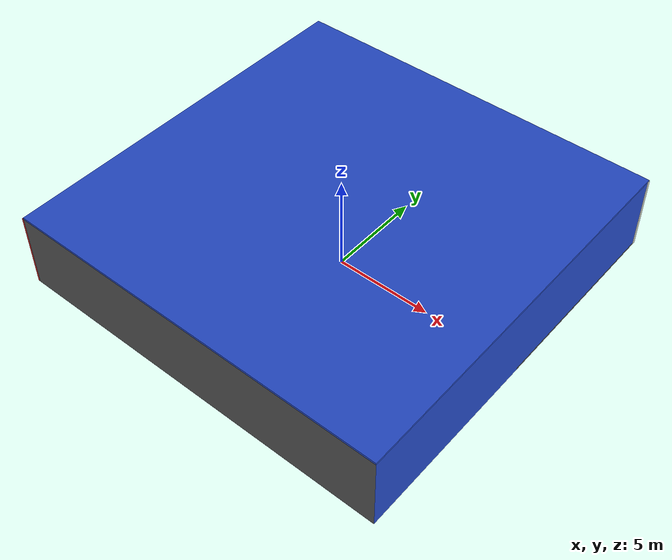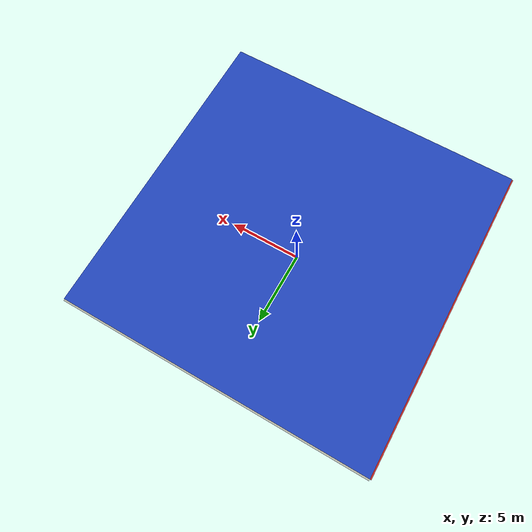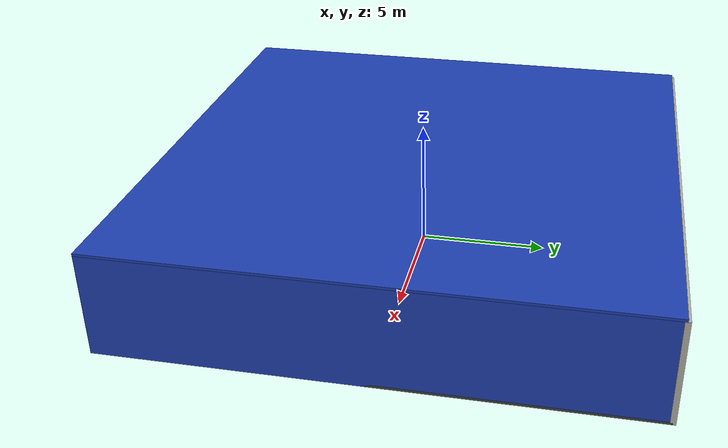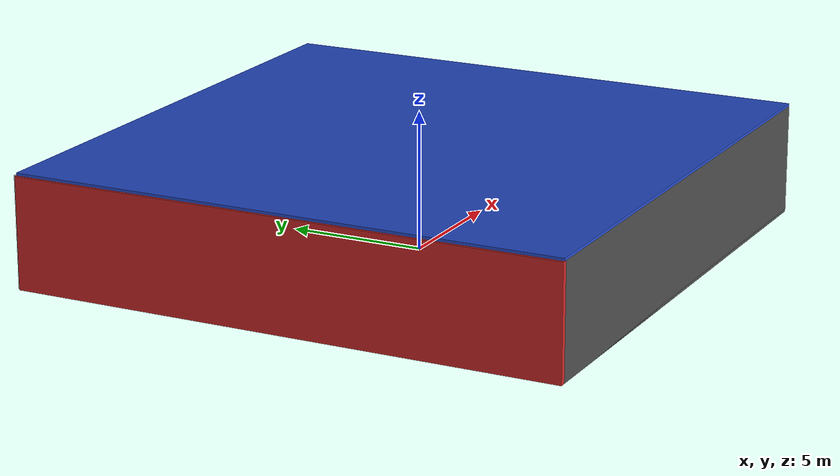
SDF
<sdf version="1.4">
 <world name="default">
  <physics type="ode">
   <max_step_size>0.001</max_step_size>
   <real_time_factor>1</real_time_factor>
   <real_time_update_rate>1000</real_time_update_rate>
   <gravity>0 0 -9.8</gravity>
  </physics>
  <scene><ambient>0.4 0.4 0.4 1</ambient><background>0.7 0.7 0.7 1</background><shadows>1</shadows></scene>
  <model name="Surrounding">
   <static>1</static>
   <link name="Ceiling">
    <collision name="Ceiling_Collision"><geometry><box><size>20 20 0.1</size></box></geometry></collision>
    <visual name="Ceiling_Visual">
     <geometry><box><size>20 20 0.1</size></box></geometry>
     <material>
      <script><uri>file://media/materials/scripts/gazebo.material</uri><name>Gazebo/BlueGlow</name></script>
     </material>
    </visual>
    <pose>0 0 4.05 0 0 0</pose>
   </link>
   <link name="Wall_South">
    <collision name="Wall_South_Collision">
     <geometry><box><size>20 0 4</size></box></geometry>
     <pose>0 0 2 0 -0 0</pose>
    </collision>
    <visual name="Wall_South_Visual">
     <pose>0 0 2 0 -0 0</pose>
     <geometry><box><size>20 0 4</size></box></geometry>
     <material>
      <script><uri>file://media/materials/scripts/gazebo.material</uri><name>Gazebo/DarkGrey</name></script>
     </material>
    </visual>
    <velocity_decay><linear>0</linear><angular>0</angular></velocity_decay>
    <pose>0 -10 0 0 -0 0</pose>
   </link>
   <link name="Wall_East">
    <collision name="Wall_21_Collision">
     <geometry><box><size>20 0 4</size></box></geometry>
     <pose>0 0 2 0 -0 0</pose>
    </collision>
    <visual name="Wall_21_Visual">
     <pose>0 0 2 0 -0 0</pose>
     <geometry><box><size>20 0 4</size></box></geometry>
     <material>
      <script><uri>file://media/materials/scripts/gazebo.material</uri><name>Gazebo/BlueLaser</name></script>
     </material>
    </visual>
    <velocity_decay><linear>0</linear><angular>0</angular></velocity_decay>
    <pose>10 0 0 0 -0 1.5708</pose>
   </link>
   <link name="Wall_North">
    <collision name="Wall_22_Collision">
     <geometry><box><size>20 0.2 4</size></box></geometry>
     <pose>0 0 2 0 -0 0</pose>
    </collision>
    <visual name="Wall_22_Visual">
     <pose>0 0 2 0 -0 0</pose>
     <geometry><box><size>20 0.2 4</size></box></geometry>
     <material>
      <script><uri>file://media/materials/scripts/gazebo.material</uri><name>Gazebo/PaintedWall</name></script>
     </material>
    </visual>
    <velocity_decay><linear>0</linear><angular>0</angular></velocity_decay>
    <pose>0 10 0 0 -0 0</pose>
   </link>
   <link name="Wall_West">
    <collision name="Wall_23_Collision">
     <geometry><box><size>20 0.2 4</size></box></geometry>
     <pose>0 0 2 0 -0 0</pose>
    </collision>
    <visual name="Wall_23_Visual">
     <pose>0 0 2 0 -0 0</pose>
     <geometry><box><size>20 0.2 4</size></box></geometry>
     <material>
      <script><uri>file://media/materials/scripts/gazebo.material</uri><name>Gazebo/RedGlow</name></script>
     </material>
    </visual>
    <velocity_decay><linear>0</linear><angular>0</angular></velocity_decay>
    <pose>-10 0 0 0 0 -1.5708</pose>
   </link>
   <link name="Ground_link">
    <collision name="collision">
     <pose>0 0 .05 0 -0 0</pose>
     <geometry><box><size>20 20 0.1</size></box></geometry>
    </collision>
    <visual name="visual">
     <pose>0 0 .05 0 -0 0</pose>
     <geometry><box><size>20 20 0.1</size></box></geometry>
     <material>
      <script><uri>file://media/materials/scripts/gazebo.material</uri><name>Gazebo/Road</name></script>
     </material>
    </visual>
   </link>
   <static>1</static>
  </model>
  <spherical_coordinates>
   <surface_model>EARTH_WGS84</surface_model>
   <latitude_deg>0</latitude_deg>
   <longitude_deg>0</longitude_deg>
   <elevation>0</elevation>
   <heading_deg>0</heading_deg>
  </spherical_coordinates>
  <light name="lightball_0" type="diffuse">
   <diffuse>0.8 0.8 0.8 1</diffuse>
   <specular>0.2 0.2 0.2 1</specular>
   <attenuation>
    <range>100</range>
    <constant>0.7</constant>
    <linear>0.01</linear>
    <quadratic>0.001</quadratic>
   </attenuation>
   <direction>-0.5 0.1 -0.9</direction>
   <pose>0.045123603093 -1.52541599995 3.52509510032 0 0 0</pose>
  </light>
  <light name="lightball_1" type="diffuse">
   <diffuse>0.8 0.8 0.8 1</diffuse>
   <specular>0.2 0.2 0.2 1</specular>
   <attenuation>
    <range>100</range>
    <constant>0.7</constant>
    <linear>0.01</linear>
    <quadratic>0.001</quadratic>
   </attenuation>
   <direction>-0.5 0.1 -0.9</direction>
   <pose>-7.06412315189 -0.405111003887 3.75323908529 0 0 0</pose>
  </light>
  <light name="lightball_2" type="diffuse">
   <diffuse>0.8 0.8 0.8 1</diffuse>
   <specular>0.2 0.2 0.2 1</specular>
   <attenuation>
    <range>100</range>
    <constant>0.7</constant>
    <linear>0.01</linear>
    <quadratic>0.001</quadratic>
   </attenuation>
   <direction>-0.5 0.1 -0.9</direction>
   <pose>4.31157852516 -7.34716320823 1.11212820331 0 0 0</pose>
  </light>
  <light name="lightball_3" type="diffuse">
   <diffuse>0.8 0.8 0.8 1</diffuse>
   <specular>0.2 0.2 0.2 1</specular>
   <attenuation>
    <range>100</range>
    <constant>0.7</constant>
    <linear>0.01</linear>
    <quadratic>0.001</quadratic>
   </attenuation>
   <direction>-0.5 0.1 -0.9</direction>
   <pose>8.25693053797 0.808852619252 1.71004772069 0 0 0</pose>
  </light>
  <light name="lightball_4" type="diffuse">
   <diffuse>0.8 0.8 0.8 1</diffuse>
   <specular>0.2 0.2 0.2 1</specular>
   <attenuation>
    <range>100</range>
    <constant>0.7</constant>
    <linear>0.01</linear>
    <quadratic>0.001</quadratic>
   </attenuation>
   <direction>-0.5 0.1 -0.9</direction>
   <pose>9.45587755785 -9.3218360031 1.7514131228 0 0 0</pose>
  </light>
  <include><uri>model://cabinet</uri><pose>-4.47867968788 4.29142166177 0 0 0 2.12152309007</pose></include>
  <include><uri>model://table</uri><pose>-1.24959811004 1.72950612621 0 0 0 0.908255850862</pose></include>
  <include><uri>model://cabinet</uri><pose>0.840691757568 -5.05133148015 0 0 0 1.04411240603</pose></include>
  <include><uri>model://cabinet</uri><pose>4.94958470837 6.83409477119 0 0 0 0.208522687086</pose></include>
  <include>
   <uri>model://robocup_3Dsim_goal</uri>
   <pose>8.32876808303 -7.83571294554 0 0 0 0.62312209824</pose>
  </include>
  <include>
   <uri>model://construction_cone</uri>
   <pose>6.34061064097 -5.31601339187 0 0 0 0.211491314561</pose>
  </include>
 </world>
</sdf>

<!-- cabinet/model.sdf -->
<sdf version="1.5">
  <model name="cabinet">
    <static>true</static>
    <link name="cabinet_bottom_plate">
      <inertial>
        <pose>0 0 -1 0 0 0</pose>
        <inertia>
          <ixx>2.050000</ixx>
          <ixy>0</ixy>
          <ixz>0</ixz>
          <iyy>2.050000</iyy>
          <iyz>0</iyz>
          <izz>2.050000</izz>
        </inertia>
        <mass>25.000000</mass>
      </inertial>
      <collision name="cabinet_bottom_plate_geom">
        <pose>0 0 0.010000 0 0 0</pose>
        <geometry>
          <box>
            <size>0.450000 0.450000 0.020000</size>
          </box>
        </geometry>
      </collision>
      <visual name="cabinet_bottom_plate_geom_visual">
        <pose>0 0 0.010000 0 0 0</pose>
        <geometry>
          <box>
            <size>0.450000 0.450000 0.020000</size>
          </box>
        </geometry>
        <material>
          <script>
            <uri>model://media/materials/scripts/gazebo.material</uri>
            <name>Gazebo/Wood</name>
          </script>
        </material>
      </visual>
      <collision name="cabinet_bottom_plate_geom_cabinet_back_plate">
        <pose>0.235000 0 0.510000 0 0 0</pose>
        <geometry>
          <box>
            <size>0.020000 0.450000 1.020000</size>
          </box>
        </geometry>
      </collision>
      <visual name="cabinet_bottom_plate_geom_cabinet_back_plate_visual">
        <pose>0.235000 0 0.510000 0 0 0</pose>
        <geometry>
          <box>
            <size>0.020000 0.450000 1.020000</size>
          </box>
        </geometry>
        <material>
          <script>
            <uri>model://media/materials/scripts/gazebo.material</uri>
            <name>Gazebo/Wood</name>
          </script>
        </material>
      </visual>
      <collision name="cabinet_bottom_plate_geom_cabinet_left_plate">
        <pose>0 0.235000 0.510000 0 0 0</pose>
        <geometry>
          <box>
            <size>0.450000 0.020000 1.020000</size>
          </box>
        </geometry>
      </collision>
      <visual name="cabinet_bottom_plate_geom_cabinet_left_plate_visual">
        <pose>0 0.235000 0.510000 0 0 0</pose>
        <geometry>
          <box>
            <size>0.450000 0.020000 1.020000</size>
          </box>
        </geometry>
        <material>
          <script>
            <uri>model://media/materials/scripts/gazebo.material</uri>
            <name>Gazebo/Wood</name>
          </script>
        </material>
      </visual>
      <collision name="cabinet_bottom_plate_geom_cabinet_middle_plate">
        <pose>0 0 0.510000 0 0 0</pose>
        <geometry>
          <box>
            <size>0.450000 0.450000 0.020000</size>
          </box>
        </geometry>
      </collision>
      <visual name="cabinet_bottom_plate_geom_cabinet_middle_plate_visual">
        <pose>0 0 0.510000 0 0 0</pose>
        <geometry>
          <box>
            <size>0.450000 0.450000 0.020000</size>
          </box>
        </geometry>
        <material>
          <script>
            <uri>model://media/materials/scripts/gazebo.material</uri>
            <name>Gazebo/Wood</name>
          </script>
        </material>
      </visual>
      <collision name="cabinet_bottom_plate_geom_cabinet_right_plate">
        <pose>0 -0.235000 0.510000 0 0 0</pose>
        <geometry>
          <box>
            <size>0.450000 0.020000 1.020000</size>
          </box>
        </geometry>
      </collision>
      <visual name="cabinet_bottom_plate_geom_cabinet_right_plate_visual">
        <pose>0 -0.235000 0.510000 0 0 0</pose>
        <geometry>
          <box>
            <size>0.450000 0.020000 1.020000</size>
          </box>
        </geometry>
        <material>
          <script>
            <uri>model://media/materials/scripts/gazebo.material</uri>
            <name>Gazebo/Wood</name>
          </script>
        </material>
      </visual>
      <collision name="cabinet_bottom_plate_geom_cabinet_top_plate">
        <pose>0 0 1.010000 0 0 0</pose>
        <geometry>
          <box>
            <size>0.450000 0.450000 0.020000</size>
          </box>
        </geometry>
      </collision>
      <visual name="cabinet_bottom_plate_geom_cabinet_top_plate_visual">
        <pose>0 0 1.010000 0 0 0</pose>
        <geometry>
          <box>
            <size>0.450000 0.450000 0.020000</size>
          </box>
        </geometry>
        <material>
          <script>
            <uri>model://media/materials/scripts/gazebo.material</uri>
            <name>Gazebo/Wood</name>
          </script>
        </material>
      </visual>
    </link>
  </model>
</sdf>

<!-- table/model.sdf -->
<sdf version="1.5">
  <model name="table">
    <static>true</static>
    <link name="link">
      <collision name="surface">
        <pose>0 0 1.0 0 0 0</pose>
        <geometry>
          <box>
            <size>1.5 0.8 0.03</size>
          </box>
        </geometry>
        <surface>
          <friction>
            <ode>
              <mu>0.6</mu>
              <mu2>0.6</mu2>
            </ode>
          </friction>
        </surface>
      </collision>
      <visual name="visual1">
        <pose>0 0 1.0 0 0 0</pose>
        <geometry>
          <box>
            <size>1.5 0.8 0.03</size>
          </box>
        </geometry>
        <material>
          <script>
            <uri>model://media/materials/scripts/gazebo.material</uri>
            <name>Gazebo/Wood</name>
          </script>
        </material>
      </visual>
      <collision name="front_left_leg">
        <pose>0.68 0.38 0.5 0 0 0</pose>
        <geometry>
          <cylinder>
            <radius>0.02</radius>
            <length>1.0</length>
          </cylinder>
        </geometry>
      </collision>
      <visual name="front_left_leg">
        <pose>0.68 0.38 0.5 0 0 0</pose>
        <geometry>
          <cylinder>
            <radius>0.02</radius>
            <length>1.0</length>
          </cylinder>
        </geometry>
        <material>
          <script>
            <uri>model://media/materials/scripts/gazebo.material</uri>
            <name>Gazebo/Grey</name>
          </script>
        </material>
      </visual>
      <collision name="front_right_leg">
        <pose>0.68 -0.38 0.5 0 0 0</pose>
        <geometry>
          <cylinder>
            <radius>0.02</radius>
            <length>1.0</length>
          </cylinder>
        </geometry>
      </collision>
      <visual name="front_right_leg">
        <pose>0.68 -0.38 0.5 0 0 0</pose>
        <geometry>
          <cylinder>
            <radius>0.02</radius>
            <length>1.0</length>
          </cylinder>
        </geometry>
        <material>
          <script>
            <uri>model://media/materials/scripts/gazebo.material</uri>
            <name>Gazebo/Grey</name>
          </script>
        </material>
      </visual>
      <collision name="back_right_leg">
        <pose>-0.68 -0.38 0.5 0 0 0</pose>
        <geometry>
          <cylinder>
            <radius>0.02</radius>
            <length>1.0</length>
          </cylinder>
        </geometry>
      </collision>
      <visual name="back_right_leg">
        <pose>-0.68 -0.38 0.5 0 0 0</pose>
        <geometry>
          <cylinder>
            <radius>0.02</radius>
            <length>1.0</length>
          </cylinder>
        </geometry>
        <material>
          <script>
            <uri>model://media/materials/scripts/gazebo.material</uri>
            <name>Gazebo/Grey</name>
          </script>
        </material>
      </visual>
      <collision name="back_left_leg">
        <pose>-0.68 0.38 0.5 0 0 0</pose>
        <geometry>
          <cylinder>
            <radius>0.02</radius>
            <length>1.0</length>
          </cylinder>
        </geometry>
      </collision>
      <visual name="back_left_leg">
        <pose>-0.68 0.38 0.5 0 0 0</pose>
        <geometry>
          <cylinder>
            <radius>0.02</radius>
            <length>1.0</length>
          </cylinder>
        </geometry>
        <material>
          <script>
            <uri>model://media/materials/scripts/gazebo.material</uri>
            <name>Gazebo/Grey</name>
          </script>
        </material>
      </visual>
    </link>
  </model>
</sdf>

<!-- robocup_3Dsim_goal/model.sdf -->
<sdf version="1.5">
  <model name="robocup_3d_goal">
    <static>true</static>
    <link name="left_post">
      <pose>0 1.05 0.45 0 0 0</pose>
      <collision name="collision">
        <geometry>
          <cylinder>
            <radius>0.05</radius>
            <length>0.9</length>
          </cylinder>
        </geometry>
      </collision>
      <visual name="visual">
        <geometry>
          <cylinder>
            <radius>0.05</radius>
            <length>0.9</length>
          </cylinder>
        </geometry>
        <material>
          <script>
            <uri>file://media/materials/scripts/gazebo.material</uri>
            <name>Gazebo/ZincYellow</name>
          </script>
        </material>
      </visual>
    </link>
    <link name="left_support_horiz_lower">
      <pose>0.30 1.05 0.01 0 0 0</pose>
      <collision name="collision">
        <geometry>
          <box>
            <size>0.50 0.02 0.02</size>
          </box>
        </geometry>
      </collision>
      <visual name="visual">
        <geometry>
          <box>
            <size>0.50 0.02 0.02</size>
          </box>
        </geometry>
        <material>
          <script>
            <uri>file://media/materials/scripts/gazebo.material</uri>
            <name>Gazebo/White</name>
          </script>
        </material>
      </visual>
    </link>
    <link name="left_support_horiz_upper">
      <pose>0.30 1.05 0.79 0 0 0</pose>
      <collision name="collision">
        <geometry>
          <box>
            <size>0.50 0.02 0.02</size>
          </box>
        </geometry>
      </collision>
      <visual name="visual">
        <geometry>
          <box>
            <size>0.50 0.02 0.02</size>
          </box>
        </geometry>
        <material>
          <script>
            <uri>file://media/materials/scripts/gazebo.material</uri>
            <name>Gazebo/White</name>
          </script>
        </material>
      </visual>
    </link>
    <link name="left_support_vertical">
      <pose>0.56 1.05 0.4 0 1.5708 0</pose>
      <collision name="collision">
        <geometry>
          <box>
            <size>0.80 0.02 0.02</size>
          </box>
        </geometry>
      </collision>
      <visual name="visual">
        <geometry>
          <box>
            <size>0.80 0.02 0.02</size>
          </box>
        </geometry>
        <material>
          <script>
            <uri>file://media/materials/scripts/gazebo.material</uri>
            <name>Gazebo/White</name>
          </script>
        </material>
      </visual>
    </link>
    <link name="right_support_horiz_lower">
      <pose>0.30 -1.05 0.01 0 0 0</pose>
      <collision name="collision">
        <geometry>
          <box>
            <size>0.50 0.02 0.02</size>
          </box>
        </geometry>
      </collision>
      <visual name="visual">
        <geometry>
          <box>
            <size>0.50 0.02 0.02</size>
          </box>
        </geometry>
        <material>
          <script>
            <uri>file://media/materials/scripts/gazebo.material</uri>
            <name>Gazebo/White</name>
          </script>
        </material>
      </visual>
    </link>
    <link name="right_support_horiz_upper">
      <pose>0.30 -1.05 0.79 0 0 0</pose>
      <collision name="collision">
        <geometry>
          <box>
            <size>0.50 0.02 0.02</size>
          </box>
        </geometry>
      </collision>
      <visual name="visual">
        <geometry>
          <box>
            <size>0.50 0.02 0.02</size>
          </box>
        </geometry>
        <material>
          <script>
            <uri>file://media/materials/scripts/gazebo.material</uri>
            <name>Gazebo/White</name>
          </script>
        </material>
      </visual>
    </link>
    <link name="right_support_vertical">
      <pose>0.56 -1.05 0.4 0 1.5708 0</pose>
      <collision name="collision">
        <geometry>
          <box>
            <size>0.80 0.02 0.02</size>
          </box>
        </geometry>
      </collision>
      <visual name="visual">
        <geometry>
          <box>
            <size>0.80 0.02 0.02</size>
          </box>
        </geometry>
        <material>
          <script>
            <uri>file://media/materials/scripts/gazebo.material</uri>
            <name>Gazebo/White</name>
          </script>
        </material>
      </visual>
    </link>
    <link name="center_support_horiz_lower">
      <pose>0.56 0 0.01 0 1.5708 0</pose>
      <collision name="collision">
        <geometry>
          <box>
            <size>0.02 2.08 0.02</size>
          </box>
        </geometry>
      </collision>
      <visual name="visual">
        <geometry>
          <box>
            <size>0.02 2.08 0.02</size>
          </box>
        </geometry>
        <material>
          <script>
            <uri>file://media/materials/scripts/gazebo.material</uri>
            <name>Gazebo/White</name>
          </script>
        </material>
      </visual>
    </link>
    <link name="center_support_horiz_upper">
      <pose>0.56 0 0.79 0 1.5708 0</pose>
      <collision name="collision">
        <geometry>
          <box>
            <size>0.02 2.08 0.02</size>
          </box>
        </geometry>
      </collision>
      <visual name="visual">
        <geometry>
          <box>
            <size>0.02 2.08 0.02</size>
          </box>
        </geometry>
        <material>
          <script>
            <uri>file://media/materials/scripts/gazebo.material</uri>
            <name>Gazebo/White</name>
          </script>
        </material>
      </visual>
    </link>
    <link name="right_post">
      <pose>0 -1.05 0.45 0 0 0</pose>
      <collision name="collision">
        <geometry>
          <cylinder>
            <radius>0.05</radius>
            <length>0.9</length>
          </cylinder>
        </geometry>
      </collision>
      <visual name="visual">
        <geometry>
          <cylinder>
            <radius>0.05</radius>
            <length>0.9</length>
          </cylinder>
        </geometry>
        <material>
          <script>
            <uri>file://media/materials/scripts/gazebo.material</uri>
            <name>Gazebo/ZincYellow</name>
          </script>
        </material>
      </visual>
    </link>
    <link name="crossbar">
      <pose>0 0 0.85 1.57 1.57 0</pose>
      <collision name="collision">
        <geometry>
          <cylinder>
            <radius>0.05</radius>
            <length>2.0</length>
          </cylinder>
        </geometry>
      </collision>
      <visual name="visual">
        <geometry>
          <cylinder>
            <radius>0.05</radius>
            <length>2.0</length>
          </cylinder>
        </geometry>
        <material>
          <script>
            <uri>file://media/materials/scripts/gazebo.material</uri>
            <name>Gazebo/ZincYellow</name>
          </script>
        </material>
      </visual>
    </link>
    <link name="center_net">
      <pose>0.56 0 0.40 0 0 0</pose>
      <collision name="collision">
        <geometry>
          <box>
            <size>0.01 2.1 0.80</size>
          </box>
        </geometry>
      </collision>
      <visual name="visual">
        <geometry>
          <box>
            <size>0.01 2.1 0.80</size>
          </box>
        </geometry>
        <material>
          <script>
            <uri>model://../model_source/models/robocup09_spl_field/materials/scripts/</uri>
            <uri>model://../model_source/models/robocup09_spl_field/materials/textures/</uri>
            <name>RoboCup/Net</name>
          </script>
        </material>
      </visual>
    </link>
    <link name="left_net">
      <pose>0.30 1.05 0.40 0 0 0</pose>
      <collision name="collision">
        <geometry>
          <box>
            <size>0.50 0.01 0.76</size>
          </box>
        </geometry>
      </collision>
      <visual name="visual">
        <geometry>
          <box>
            <size>0.50 0.01 0.76</size>
          </box>
        </geometry>
        <material>
          <script>
            <uri>model://../model_source/models/robocup09_spl_field/materials/scripts/</uri>
            <uri>model://../model_source/models/robocup09_spl_field/materials/textures/</uri>
            <name>RoboCup/Net</name>
          </script>
        </material>
      </visual>
    </link>
    <link name="right_net">
      <pose>0.30 -1.05 0.40 0 0 0</pose>
      <collision name="collision">
        <geometry>
          <box>
            <size>0.50 0.01 0.76</size>
          </box>
        </geometry>
      </collision>
      <visual name="visual">
        <geometry>
          <box>
            <size>0.50 0.01 0.76</size>
          </box>
        </geometry>
        <material>
          <script>
            <uri>model://../model_source/models/robocup09_spl_field/materials/scripts/</uri>
            <uri>model://../model_source/models/robocup09_spl_field/materials/textures/</uri>
            <name>RoboCup/Net</name>
          </script>
        </material>
      </visual>
    </link>
  </model>
</sdf>

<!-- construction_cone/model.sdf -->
<sdf version="1.5">
  <model name="Construction Cone">
    <link name="link">
      <collision name="collision">
        <geometry>
          <mesh>
            <scale>10 10 10</scale>
            <uri>file://isr-testbed/construction_cone/meshes/construction_cone.dae</uri>
          </mesh>
        </geometry>
      </collision>
      <visual name="visual">
        <geometry>
          <mesh>
            <scale>10 10 10</scale>
            <uri>file://isr-testbed/construction_cone/meshes/construction_cone.dae</uri>
          </mesh>
        </geometry>
      </visual>
    </link>
  </model>
</sdf>
